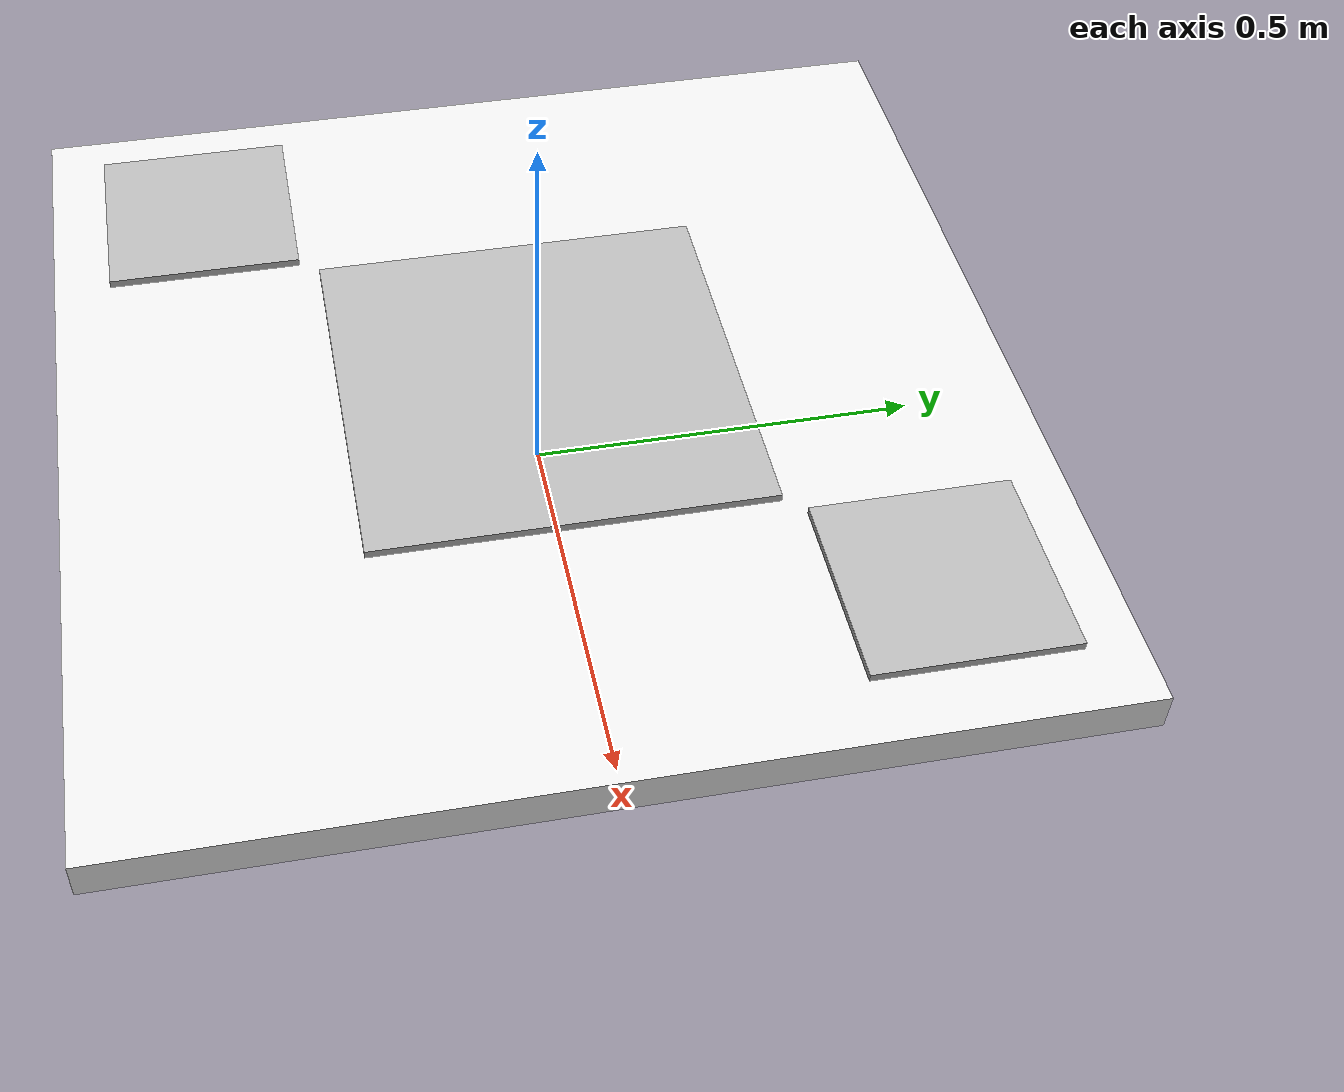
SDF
<?xml version="1.0" ?>
<sdf version="1.5">
  <model name="landing_pad">
    <pose>0.0 0.0 0.1  0 0 0</pose>
    <static>false</static>
    <link name="link">
      <collision name="base_collision">
        <geometry>
          <box>
            <size>1.2 1.2 0.05</size>
          </box>
        </geometry>
      </collision>
      <visual name="base_visual">
        <geometry>
          <box>
            <size>1.2 1.2 0.05</size>
          </box>
        </geometry>
        <material>
          <script>
            <name>Gazebo/White</name>
            <uri>file://media/materials/scripts/gazebo.material</uri>
          </script>
        </material>
      </visual>
      <visual name="pad_visual">
      	<pose>0 0 0.04 0 0 0</pose>
        <geometry>
          <box>
            <size>0.5 0.5 0.01</size>
          </box>
        </geometry>
        <material>
          <script>
          	<uri>model://landing_pad/materials/scripts</uri>
               <uri>model://landing_pad/materials/textures</uri>
          	<name>ChargingPadTexture</name>
          </script>
        </material>
      </visual>
      <visual name="marker1">
      	<pose>0.4 0.4 0.04 0 0 0</pose>
        <geometry>
          <box>
            <size>0.25 0.25 0.01</size>
          </box>
        </geometry>
        <material>
          <script>
          	<uri>model://landing_pad/materials/scripts</uri>
               <uri>model://landing_pad/materials/textures</uri>
          	<name>at5Texture</name>
          </script>
        </material>
      </visual>
      <visual name="marker2">
      	<pose>-0.4 -0.4 0.04 0 0 0</pose>
        <geometry>
          <box>
            <size>0.25 0.25 0.01</size>
          </box>
        </geometry>
        <material>
          <script>
          	<uri>model://landing_pad/materials/scripts</uri>
               <uri>model://landing_pad/materials/textures</uri>
          	<name>at4Texture</name>
          </script>
        </material>
      </visual>
    </link>
  </model>
</sdf>
